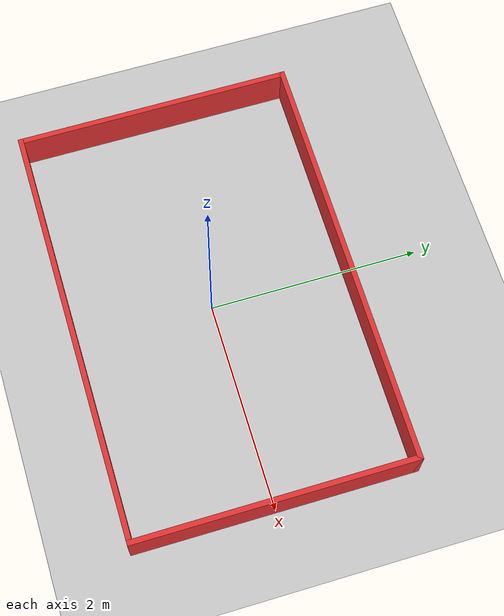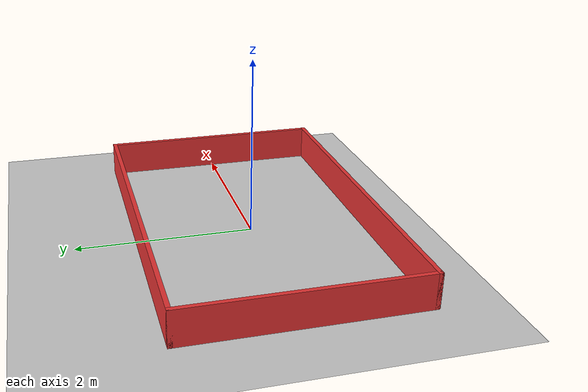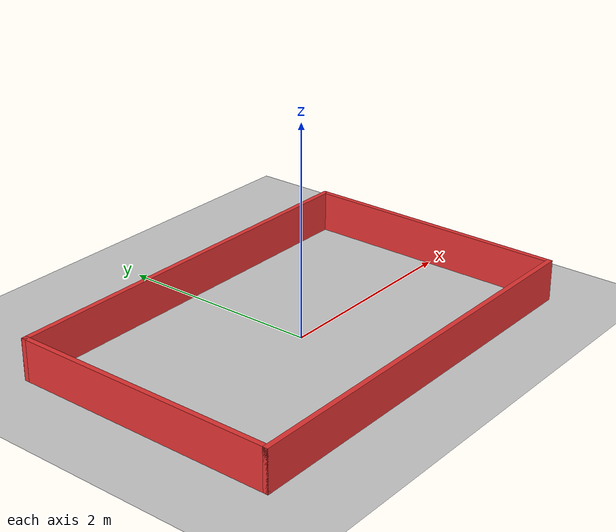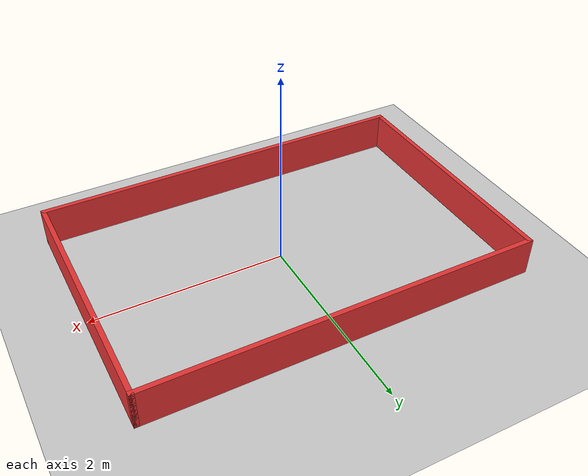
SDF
<?xml version="1.0" ?>
<!-- This world was just created with 4 wall in order for the vehicle inside Gazebo and RVIZ to detect the walls with the Lidar -->
<sdf version="1.6">
  <world name="vehicle_world">
    <physics name="1ms" type="ignored">
      <max_step_size>0.001</max_step_size>
      <real_time_factor>1.0</real_time_factor>
    </physics>
    <plugin
      filename="gz-sim-physics-system"
      name="gz::sim::systems::Physics">
    </plugin>
    <plugin
      filename="gz-sim-user-commands-system"
      name="gz::sim::systems::UserCommands">
    </plugin>
    <plugin
      filename="gz-sim-scene-broadcaster-system"
      name="gz::sim::systems::SceneBroadcaster">
    </plugin>
    <plugin
      filename="gz-sim-contact-system"
      name="gz::sim::systems::Contact">
    </plugin>

    <light type="directional" name="sun">
      <cast_shadows>true</cast_shadows>
      <pose>0 0 10 0 0 0</pose>
      <diffuse>0.8 0.8 0.8 1</diffuse>
      <specular>0.2 0.2 0.2 1</specular>
      <attenuation>
        <range>1000</range>
        <constant>0.9</constant>
        <linear>0.01</linear>
        <quadratic>0.001</quadratic>
      </attenuation>
      <direction>-0.5 0.1 -0.9</direction>
    </light>

    <model name="ground_plane">
      <static>true</static>
      <link name="link">
        <collision name="collision">
          <geometry>
            <plane>
              <normal>0 0 1</normal>
              <size>100 100</size>
            </plane>
          </geometry>
        </collision>
        <visual name="visual">
          <geometry>
            <plane>
              <normal>0 0 1</normal>
              <size>100 100</size>
            </plane>
          </geometry>
          <material>
            <ambient>0.8 0.8 0.8 1</ambient>
            <diffuse>0.8 0.8 0.8 1</diffuse>
            <specular>0.8 0.8 0.8 1</specular>
          </material>
        </visual>
      </link>
    </model>

    <model name="track_wall_outer_north">
      <static>true</static>
      <pose>0 1.3 0.2 0 0 0</pose>
      <link name="link">
        <collision name="collision">
          <geometry><box><size>4.05 0.05 0.4</size></box></geometry>
        </collision>
        <visual name="visual">
          <geometry><box><size>4.05 0.05 0.4</size></box></geometry>
          <material>
            <ambient>0.9 0.2 0.2 1</ambient>
            <diffuse>0.9 0.2 0.2 1</diffuse>
          </material>
        </visual>
      </link>
    </model>

    <model name="track_wall_outer_south">
      <static>true</static>
      <pose>0 -1.3 0.2 0 0 0</pose>
      <link name="link">
        <collision name="collision">
          <geometry><box><size>4.05 0.05 0.4</size></box></geometry>
        </collision>
        <visual name="visual">
          <geometry><box><size>4.05 0.05 0.4</size></box></geometry>
          <material>
            <ambient>0.9 0.2 0.2 1</ambient>
            <diffuse>0.9 0.2 0.2 1</diffuse>
          </material>
        </visual>
      </link>
    </model>

    <model name="track_wall_outer_east">
      <static>true</static>
      <pose>2.0 0 0.2 0 0 0</pose>
      <link name="link">
        <collision name="collision">
          <geometry><box><size>0.05 2.65 0.4</size></box></geometry>
        </collision>
        <visual name="visual">
          <geometry><box><size>0.05 2.65 0.4</size></box></geometry>
          <material>
            <ambient>0.9 0.2 0.2 1</ambient>
            <diffuse>0.9 0.2 0.2 1</diffuse>
          </material>
        </visual>
      </link>
    </model>

    <model name="track_wall_outer_west">
      <static>true</static>
      <pose>-2.0 0 0.2 0 0 0</pose>
      <link name="link">
        <collision name="collision">
          <geometry><box><size>0.05 2.65 0.4</size></box></geometry>
        </collision>
        <visual name="visual">
          <geometry><box><size>0.05 2.65 0.4</size></box></geometry>
          <material>
            <ambient>0.9 0.2 0.2 1</ambient>
            <diffuse>0.9 0.2 0.2 1</diffuse>
          </material>
        </visual>
      </link>
    </model>

  </world>
</sdf>
